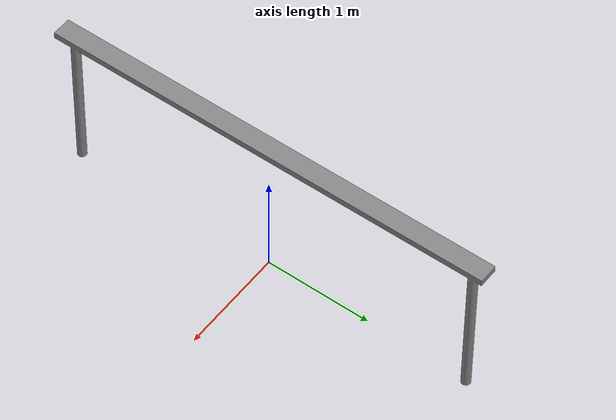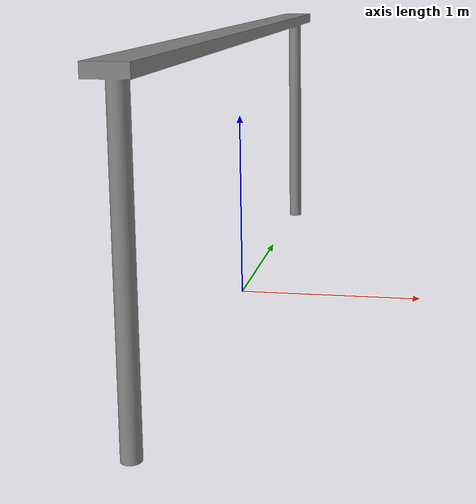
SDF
<?xml version="1.0" encoding="UTF-8"?>
<!-- |    This document was autogenerated by xacro4sdf from model.sdf.xacro            | -->
<!-- |    EDITING THIS FILE BY HAND IS NOT RECOMMENDED                                 | -->
<sdf version="1.7">
	<!--macro defination:rmuc21_sentry_rail-->
	<!--rmuc21_sentry_rail-->
	<model name="rmuc21_sentry_rail">
		<static>1</static>
		<link name="red_sentry_rail">
			<pose>0 0 1.445 0 0 0</pose>
			<visual name="sentry_rail_visual">
				<geometry>
					<mesh>
						<uri>model://rmuc21_sentry_rail/meshes/sentry_rail.dae</uri>
					</mesh>
				</geometry>
			</visual>
			<collision name="sentry_rail_collision">
				<geometry>
					<mesh>
						<uri>model://rmuc21_sentry_rail/meshes/sentry_rail.dae</uri>
					</mesh>
				</geometry>
			</collision>
		</link>
	</model>
</sdf>
